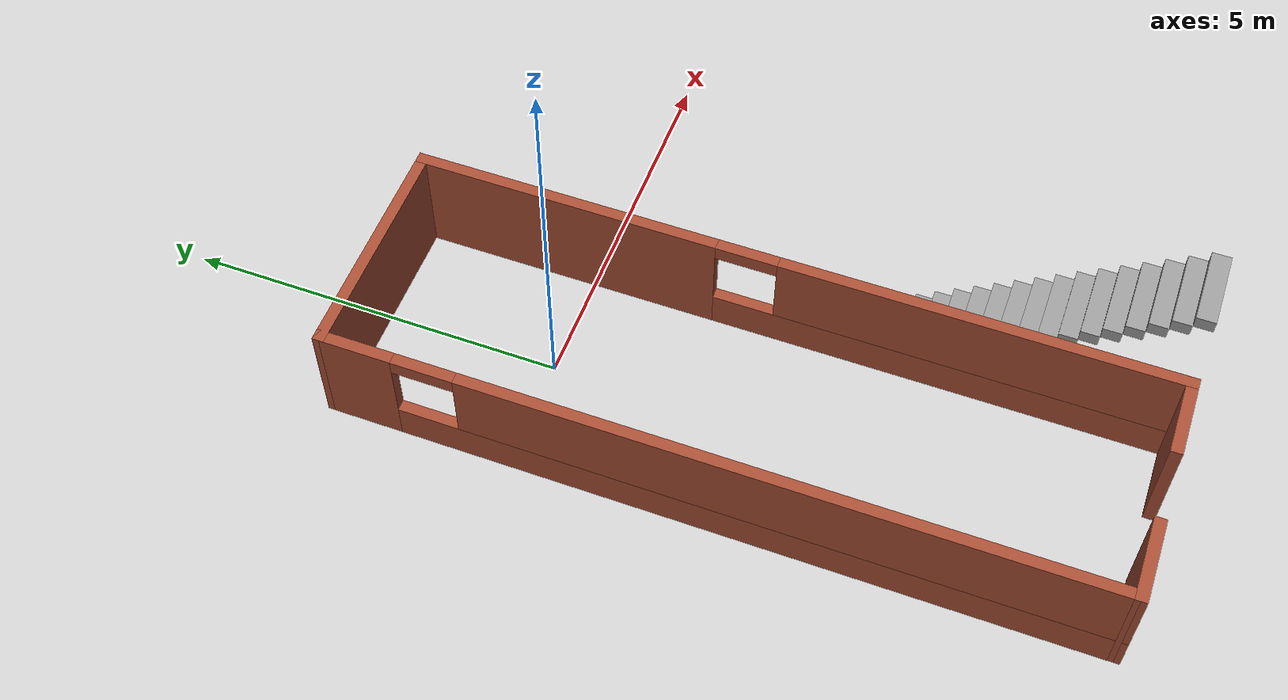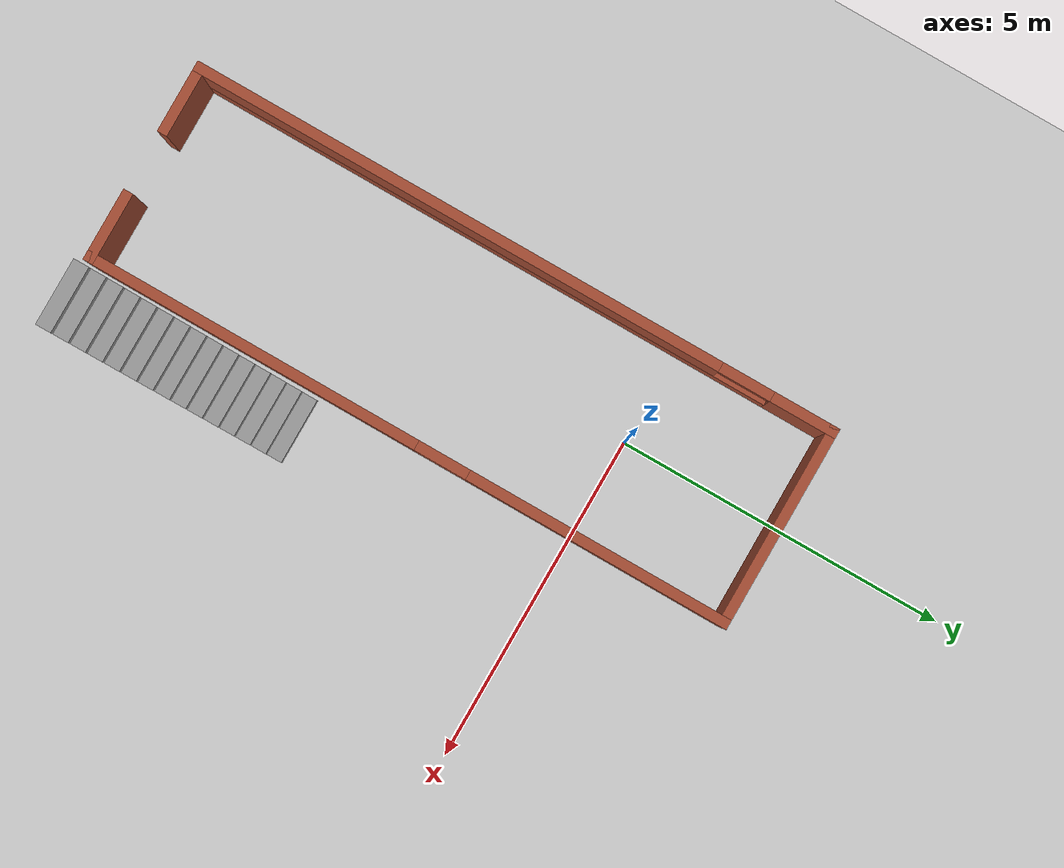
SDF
<sdf version="1.7">
 <world name="default">
  <light name="sun" type="directional">
   <pose>0 0 10 0 -0 0</pose>
   <diffuse>0.8 0.8 0.8 1</diffuse>
   <specular>0.2 0.2 0.2 1</specular>
   <attenuation>
    <range>1000</range>
    <constant>0.9</constant>
    <linear>0.01</linear>
    <quadratic>0.001</quadratic>
   </attenuation>
   <direction>-0.5 0.1 -0.9</direction>
   <spot><inner_angle>0</inner_angle><outer_angle>0</outer_angle><falloff>0</falloff></spot>
  </light>
  <model name="ground_plane">
   <static>1</static>
   <link name="link">
    <collision name="collision">
     <geometry><plane><normal>0 0 1</normal><size>100 100</size></plane></geometry>
     <surface>
      <contact><collide_bitmask>65535</collide_bitmask></contact>
      <friction><ode><mu>100</mu><mu2>50</mu2></ode></friction>
     </surface>
    </collision>
    <visual name="visual">
     <cast_shadows>0</cast_shadows>
     <geometry><plane><normal>0 0 1</normal><size>100 100</size></plane></geometry>
     <material>
      <script><uri>file://media/materials/scripts/gazebo.material</uri><name>Gazebo/Grey</name></script>
     </material>
    </visual>
   </link>
  </model>
  <gravity>0 0 -9.8</gravity>
  <magnetic_field>6e-06 2.3e-05 -4.2e-05</magnetic_field>
  <atmosphere type="adiabatic"/>
  <physics type="ode">
   <max_step_size>0.001</max_step_size>
   <real_time_factor>1</real_time_factor>
   <real_time_update_rate>1000</real_time_update_rate>
  </physics>
  <scene><ambient>0.4 0.4 0.4 1</ambient><background>0.7 0.7 0.7 1</background><shadows>1</shadows></scene>
  <spherical_coordinates>
   <surface_model>EARTH_WGS84</surface_model>
   <latitude_deg>0</latitude_deg>
   <longitude_deg>0</longitude_deg>
   <elevation>0</elevation>
   <heading_deg>0</heading_deg>
  </spherical_coordinates>
  <model name="small_boundary">
   <pose>0.541728 -2.5785 0 0 -0 0</pose>
   <link name="Stairs_0">
    <visual name="Stairs_0_Visual_0">
     <pose>1.58191 -1.53635 0.083333 0 -0 0</pose>
     <geometry><box><size>1 0.233333 0.166667</size></box></geometry>
     <material>
      <script><uri>file://media/materials/scripts/gazebo.material</uri><name>Gazebo/Grey</name></script>
      <ambient>1 1 1 1</ambient>
     </material>
     <meta><layer>0</layer></meta>
    </visual>
    <collision name="Stairs_0_Collision_0">
     <geometry><box><size>1 0.233333 0.166667</size></box></geometry>
     <pose>1.58191 -1.53635 0.083333 0 -0 0</pose>
    </collision>
    <visual name="Stairs_0_Visual_1">
     <pose>1.58191 -1.76968 0.25 0 -0 0</pose>
     <geometry><box><size>1 0.233333 0.166667</size></box></geometry>
     <material>
      <script><uri>file://media/materials/scripts/gazebo.material</uri><name>Gazebo/Grey</name></script>
      <ambient>1 1 1 1</ambient>
     </material>
     <meta><layer>0</layer></meta>
    </visual>
    <collision name="Stairs_0_Collision_1">
     <geometry><box><size>1 0.233333 0.166667</size></box></geometry>
     <pose>1.58191 -1.76968 0.25 0 -0 0</pose>
    </collision>
    <visual name="Stairs_0_Visual_2">
     <pose>1.58191 -2.00301 0.416667 0 -0 0</pose>
     <geometry><box><size>1 0.233333 0.166667</size></box></geometry>
     <material>
      <script><uri>file://media/materials/scripts/gazebo.material</uri><name>Gazebo/Grey</name></script>
      <ambient>1 1 1 1</ambient>
     </material>
     <meta><layer>0</layer></meta>
    </visual>
    <collision name="Stairs_0_Collision_2">
     <geometry><box><size>1 0.233333 0.166667</size></box></geometry>
     <pose>1.58191 -2.00301 0.416667 0 -0 0</pose>
    </collision>
    <visual name="Stairs_0_Visual_3">
     <pose>1.58191 -2.23635 0.583333 0 -0 0</pose>
     <geometry><box><size>1 0.233333 0.166667</size></box></geometry>
     <material>
      <script><uri>file://media/materials/scripts/gazebo.material</uri><name>Gazebo/Grey</name></script>
      <ambient>1 1 1 1</ambient>
     </material>
     <meta><layer>0</layer></meta>
    </visual>
    <collision name="Stairs_0_Collision_3">
     <geometry><box><size>1 0.233333 0.166667</size></box></geometry>
     <pose>1.58191 -2.23635 0.583333 0 -0 0</pose>
    </collision>
    <visual name="Stairs_0_Visual_4">
     <pose>1.58191 -2.46968 0.75 0 -0 0</pose>
     <geometry><box><size>1 0.233333 0.166667</size></box></geometry>
     <material>
      <script><uri>file://media/materials/scripts/gazebo.material</uri><name>Gazebo/Grey</name></script>
      <ambient>1 1 1 1</ambient>
     </material>
     <meta><layer>0</layer></meta>
    </visual>
    <collision name="Stairs_0_Collision_4">
     <geometry><box><size>1 0.233333 0.166667</size></box></geometry>
     <pose>1.58191 -2.46968 0.75 0 -0 0</pose>
    </collision>
    <visual name="Stairs_0_Visual_5">
     <pose>1.58191 -2.70301 0.916667 0 -0 0</pose>
     <geometry><box><size>1 0.233333 0.166667</size></box></geometry>
     <material>
      <script><uri>file://media/materials/scripts/gazebo.material</uri><name>Gazebo/Grey</name></script>
      <ambient>1 1 1 1</ambient>
     </material>
     <meta><layer>0</layer></meta>
    </visual>
    <collision name="Stairs_0_Collision_5">
     <geometry><box><size>1 0.233333 0.166667</size></box></geometry>
     <pose>1.58191 -2.70301 0.916667 0 -0 0</pose>
    </collision>
    <visual name="Stairs_0_Visual_6">
     <pose>1.58191 -2.93635 1.08333 0 -0 0</pose>
     <geometry><box><size>1 0.233333 0.166667</size></box></geometry>
     <material>
      <script><uri>file://media/materials/scripts/gazebo.material</uri><name>Gazebo/Grey</name></script>
      <ambient>1 1 1 1</ambient>
     </material>
     <meta><layer>0</layer></meta>
    </visual>
    <collision name="Stairs_0_Collision_6">
     <geometry><box><size>1 0.233333 0.166667</size></box></geometry>
     <pose>1.58191 -2.93635 1.08333 0 -0 0</pose>
    </collision>
    <visual name="Stairs_0_Visual_7">
     <pose>1.58191 -3.16968 1.25 0 -0 0</pose>
     <geometry><box><size>1 0.233333 0.166667</size></box></geometry>
     <material>
      <script><uri>file://media/materials/scripts/gazebo.material</uri><name>Gazebo/Grey</name></script>
      <ambient>1 1 1 1</ambient>
     </material>
     <meta><layer>0</layer></meta>
    </visual>
    <collision name="Stairs_0_Collision_7">
     <geometry><box><size>1 0.233333 0.166667</size></box></geometry>
     <pose>1.58191 -3.16968 1.25 0 -0 0</pose>
    </collision>
    <visual name="Stairs_0_Visual_8">
     <pose>1.58191 -3.40301 1.41667 0 -0 0</pose>
     <geometry><box><size>1 0.233333 0.166667</size></box></geometry>
     <material>
      <script><uri>file://media/materials/scripts/gazebo.material</uri><name>Gazebo/Grey</name></script>
      <ambient>1 1 1 1</ambient>
     </material>
     <meta><layer>0</layer></meta>
    </visual>
    <collision name="Stairs_0_Collision_8">
     <geometry><box><size>1 0.233333 0.166667</size></box></geometry>
     <pose>1.58191 -3.40301 1.41667 0 -0 0</pose>
    </collision>
    <visual name="Stairs_0_Visual_9">
     <pose>1.58191 -3.63634 1.58333 0 -0 0</pose>
     <geometry><box><size>1 0.233333 0.166667</size></box></geometry>
     <material>
      <script><uri>file://media/materials/scripts/gazebo.material</uri><name>Gazebo/Grey</name></script>
      <ambient>1 1 1 1</ambient>
     </material>
     <meta><layer>0</layer></meta>
    </visual>
    <collision name="Stairs_0_Collision_9">
     <geometry><box><size>1 0.233333 0.166667</size></box></geometry>
     <pose>1.58191 -3.63634 1.58333 0 -0 0</pose>
    </collision>
    <visual name="Stairs_0_Visual_10">
     <pose>1.58191 -3.86968 1.75 0 -0 0</pose>
     <geometry><box><size>1 0.233333 0.166667</size></box></geometry>
     <material>
      <script><uri>file://media/materials/scripts/gazebo.material</uri><name>Gazebo/Grey</name></script>
      <ambient>1 1 1 1</ambient>
     </material>
     <meta><layer>0</layer></meta>
    </visual>
    <collision name="Stairs_0_Collision_10">
     <geometry><box><size>1 0.233333 0.166667</size></box></geometry>
     <pose>1.58191 -3.86968 1.75 0 -0 0</pose>
    </collision>
    <visual name="Stairs_0_Visual_11">
     <pose>1.58191 -4.10301 1.91667 0 -0 0</pose>
     <geometry><box><size>1 0.233333 0.166667</size></box></geometry>
     <material>
      <script><uri>file://media/materials/scripts/gazebo.material</uri><name>Gazebo/Grey</name></script>
      <ambient>1 1 1 1</ambient>
     </material>
     <meta><layer>0</layer></meta>
    </visual>
    <collision name="Stairs_0_Collision_11">
     <geometry><box><size>1 0.233333 0.166667</size></box></geometry>
     <pose>1.58191 -4.10301 1.91667 0 -0 0</pose>
    </collision>
    <visual name="Stairs_0_Visual_12">
     <pose>1.58191 -4.33634 2.08333 0 -0 0</pose>
     <geometry><box><size>1 0.233333 0.166667</size></box></geometry>
     <material>
      <script><uri>file://media/materials/scripts/gazebo.material</uri><name>Gazebo/Grey</name></script>
      <ambient>1 1 1 1</ambient>
     </material>
     <meta><layer>0</layer></meta>
    </visual>
    <collision name="Stairs_0_Collision_12">
     <geometry><box><size>1 0.233333 0.166667</size></box></geometry>
     <pose>1.58191 -4.33634 2.08333 0 -0 0</pose>
    </collision>
    <visual name="Stairs_0_Visual_13">
     <pose>1.58191 -4.56968 2.25 0 -0 0</pose>
     <geometry><box><size>1 0.233333 0.166667</size></box></geometry>
     <material>
      <script><uri>file://media/materials/scripts/gazebo.material</uri><name>Gazebo/Grey</name></script>
      <ambient>1 1 1 1</ambient>
     </material>
     <meta><layer>0</layer></meta>
    </visual>
    <collision name="Stairs_0_Collision_13">
     <geometry><box><size>1 0.233333 0.166667</size></box></geometry>
     <pose>1.58191 -4.56968 2.25 0 -0 0</pose>
    </collision>
    <visual name="Stairs_0_Visual_14">
     <pose>1.58191 -4.80301 2.41667 0 -0 0</pose>
     <geometry><box><size>1 0.233333 0.166667</size></box></geometry>
     <material>
      <script><uri>file://media/materials/scripts/gazebo.material</uri><name>Gazebo/Grey</name></script>
      <ambient>1 1 1 1</ambient>
     </material>
     <meta><layer>0</layer></meta>
    </visual>
    <collision name="Stairs_0_Collision_14">
     <geometry><box><size>1 0.233333 0.166667</size></box></geometry>
     <pose>1.58191 -4.80301 2.41667 0 -0 0</pose>
    </collision>
   </link>
   <link name="Wall_2">
    <pose>-2.00673 -0.0035 0 0 -0 -1.5708</pose>
    <visual name="Wall_2_Visual_0">
     <pose>-4.49407 0 0.75 0 -0 0</pose>
     <geometry><box><size>1.01186 0.15 1.5</size></box></geometry>
     <material>
      <script><uri>file://media/materials/scripts/gazebo.material</uri><name>Gazebo/Bricks</name></script>
      <ambient>1 1 1 1</ambient>
     </material>
     <meta><layer>0</layer></meta>
    </visual>
    <collision name="Wall_2_Collision_0">
     <geometry><box><size>1.01186 0.15 1.5</size></box></geometry>
     <pose>-4.49407 0 0.75 0 -0 0</pose>
    </collision>
    <visual name="Wall_2_Visual_1">
     <pose>0.505928 0 0.25 0 -0 0</pose>
     <geometry><box><size>8.98814 0.15 0.5</size></box></geometry>
     <material>
      <script><uri>file://media/materials/scripts/gazebo.material</uri><name>Gazebo/Bricks</name></script>
      <ambient>1 1 1 1</ambient>
     </material>
     <meta><layer>0</layer></meta>
    </visual>
    <collision name="Wall_2_Collision_1">
     <geometry><box><size>8.98814 0.15 0.5</size></box></geometry>
     <pose>0.505928 0 0.25 0 -0 0</pose>
    </collision>
    <visual name="Wall_2_Visual_2">
     <pose>0.905928 0 1 0 -0 0</pose>
     <geometry><box><size>8.18814 0.15 1</size></box></geometry>
     <material>
      <script><uri>file://media/materials/scripts/gazebo.material</uri><name>Gazebo/Bricks</name></script>
      <ambient>1 1 1 1</ambient>
     </material>
     <meta><layer>0</layer></meta>
    </visual>
    <collision name="Wall_2_Collision_2">
     <geometry><box><size>8.18814 0.15 1</size></box></geometry>
     <pose>0.905928 0 1 0 -0 0</pose>
    </collision>
    <visual name="Wall_2_Visual_3">
     <pose>-3.58814 0 1.4 0 -0 0</pose>
     <geometry><box><size>0.8 0.15 0.2</size></box></geometry>
     <material>
      <script><uri>file://media/materials/scripts/gazebo.material</uri><name>Gazebo/Bricks</name></script>
      <ambient>1 1 1 1</ambient>
     </material>
     <meta><layer>0</layer></meta>
    </visual>
    <collision name="Wall_2_Collision_3">
     <geometry><box><size>0.8 0.15 0.2</size></box></geometry>
     <pose>-3.58814 0 1.4 0 -0 0</pose>
    </collision>
   </link>
   <link name="Wall_4">
    <pose>0.948272 0.0035 0 0 -0 -1.5708</pose>
    <visual name="Wall_4_Visual_0">
     <pose>-2.97789 0 0.75 0 -0 0</pose>
     <geometry><box><size>4.04423 0.15 1.5</size></box></geometry>
     <material>
      <script><uri>file://media/materials/scripts/gazebo.material</uri><name>Gazebo/Bricks</name></script>
      <ambient>1 1 1 1</ambient>
     </material>
     <meta><layer>0</layer></meta>
    </visual>
    <collision name="Wall_4_Collision_0">
     <geometry><box><size>4.04423 0.15 1.5</size></box></geometry>
     <pose>-2.97789 0 0.75 0 -0 0</pose>
    </collision>
    <visual name="Wall_4_Visual_1">
     <pose>2.02211 0 0.25 0 -0 0</pose>
     <geometry><box><size>5.95577 0.15 0.5</size></box></geometry>
     <material>
      <script><uri>file://media/materials/scripts/gazebo.material</uri><name>Gazebo/Bricks</name></script>
      <ambient>1 1 1 1</ambient>
     </material>
     <meta><layer>0</layer></meta>
    </visual>
    <collision name="Wall_4_Collision_1">
     <geometry><box><size>5.95577 0.15 0.5</size></box></geometry>
     <pose>2.02211 0 0.25 0 -0 0</pose>
    </collision>
    <visual name="Wall_4_Visual_2">
     <pose>2.42211 0 1 0 -0 0</pose>
     <geometry><box><size>5.15577 0.15 1</size></box></geometry>
     <material>
      <script><uri>file://media/materials/scripts/gazebo.material</uri><name>Gazebo/Bricks</name></script>
      <ambient>1 1 1 1</ambient>
     </material>
     <meta><layer>0</layer></meta>
    </visual>
    <collision name="Wall_4_Collision_2">
     <geometry><box><size>5.15577 0.15 1</size></box></geometry>
     <pose>2.42211 0 1 0 -0 0</pose>
    </collision>
    <visual name="Wall_4_Visual_3">
     <pose>-0.555771 0 1.4 0 -0 0</pose>
     <geometry><box><size>0.8 0.15 0.2</size></box></geometry>
     <material>
      <script><uri>file://media/materials/scripts/gazebo.material</uri><name>Gazebo/Bricks</name></script>
      <ambient>1 1 1 1</ambient>
     </material>
     <meta><layer>0</layer></meta>
    </visual>
    <collision name="Wall_4_Collision_3">
     <geometry><box><size>0.8 0.15 0.2</size></box></geometry>
     <pose>-0.555771 0 1.4 0 -0 0</pose>
    </collision>
   </link>
   <link name="Wall_6">
    <collision name="Wall_6_Collision">
     <geometry><box><size>3.10503 0.15 1.5</size></box></geometry>
     <pose>0 0 0.75 0 -0 0</pose>
    </collision>
    <visual name="Wall_6_Visual">
     <pose>0 0 0.75 0 -0 0</pose>
     <geometry><box><size>3.10503 0.15 1.5</size></box></geometry>
     <material>
      <script><uri>file://media/materials/scripts/gazebo.material</uri><name>Gazebo/Bricks</name></script>
      <ambient>1 1 1 1</ambient>
     </material>
     <meta><layer>0</layer></meta>
    </visual>
    <pose>-0.529228 4.925 0 0 -0 0.002369</pose>
   </link>
   <link name="Wall_9">
    <pose>-0.529228 -4.925 0 0 -0 0.002369</pose>
    <visual name="Wall_9_Visual_0">
     <pose>-1.00042 0 0.75 0 -0 0</pose>
     <geometry><box><size>1.10418 0.15 1.5</size></box></geometry>
     <material>
      <script><uri>file://media/materials/scripts/gazebo.material</uri><name>Gazebo/Bricks</name></script>
      <ambient>1 1 1 1</ambient>
     </material>
     <meta><layer>0</layer></meta>
    </visual>
    <collision name="Wall_9_Collision_0">
     <geometry><box><size>1.10418 0.15 1.5</size></box></geometry>
     <pose>-1.00042 0 0.75 0 -0 0</pose>
    </collision>
    <visual name="Wall_9_Visual_1">
     <pose>1.00209 0 0.75 0 -0 0</pose>
     <geometry><box><size>1.10085 0.15 1.5</size></box></geometry>
     <material>
      <script><uri>file://media/materials/scripts/gazebo.material</uri><name>Gazebo/Bricks</name></script>
      <ambient>1 1 1 1</ambient>
     </material>
     <meta><layer>0</layer></meta>
    </visual>
    <collision name="Wall_9_Collision_1">
     <geometry><box><size>1.10085 0.15 1.5</size></box></geometry>
     <pose>1.00209 0 0.75 0 -0 0</pose>
    </collision>
   </link>
   <static>1</static>
  </model>
 </world>
</sdf>
